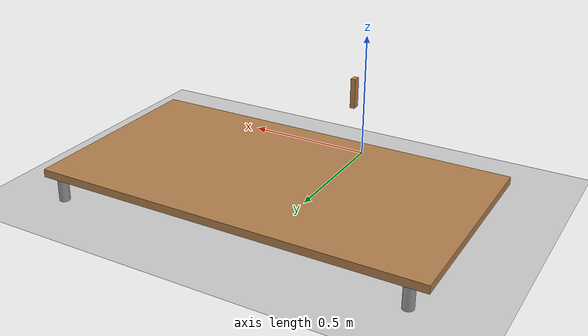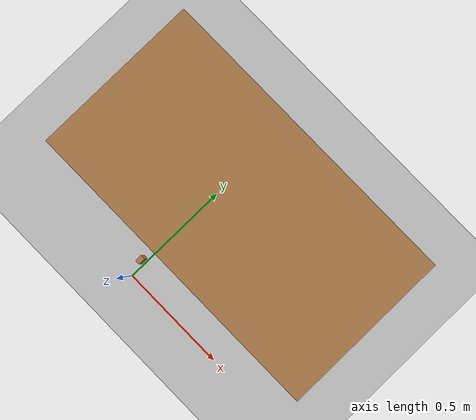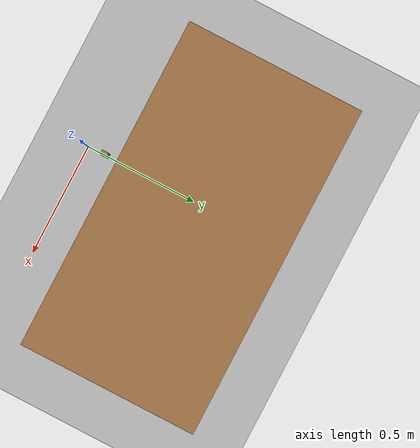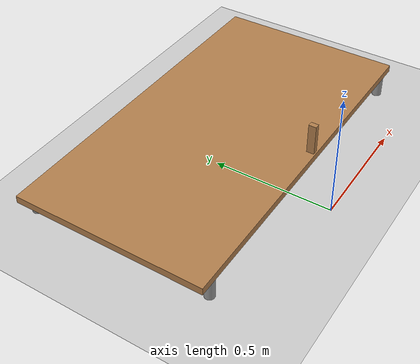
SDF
<sdf version="1.5">
 <world name="default">
  <include><uri>model://sun</uri></include>
  <include><uri>model://ground_plane</uri></include>
  <include><uri>model://table_short</uri><pose>0.1 0.54 0.05 0 0 0</pose></include>
  <include><uri>model://wood_cube_10cm_sensor3</uri><pose>0.0 0.1 0.25 0 0 1.57079</pose></include>
 </world>
</sdf>

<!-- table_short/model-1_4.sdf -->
<sdf version="1.4">
  <model name="table short">
    <static>true</static>
    <link name="link">
      <collision name="surface">
        <pose>0 0 0.05 0 0 0</pose>
        <geometry>
          <box>
            <size>1.5 0.8 0.03</size>
          </box>
        </geometry>
        <surface>
          <friction>
            <ode>
              <mu>0.6</mu>
              <mu2>0.6</mu2>
            </ode>
          </friction>
        </surface>
      </collision>
      <visual name="visual1">
        <pose>0 0 0.05 0 0 0</pose>
        <geometry>
          <box>
            <size>1.5 0.8 0.03</size>
          </box>
        </geometry>
        <material>
          <script>
            <uri>file://media/materials/scripts/gazebo.material</uri>
            <name>Gazebo/Wood</name>
          </script>
        </material>
      </visual>
      <collision name="front_left_leg">
        <pose>0.68 0.38 0.0 0 0 0</pose>
        <geometry>
          <cylinder>
            <radius>0.02</radius>
            <length>0.1</length>
          </cylinder>
        </geometry>
      </collision>
      <visual name="front_left_leg">
        <pose>0.68 0.38 0.0 0 0 0</pose>
        <geometry>
          <cylinder>
            <radius>0.02</radius>
            <length>0.1</length>
          </cylinder>
        </geometry>
        <material>
          <script>
            <uri>file://media/materials/scripts/gazebo.material</uri>
            <name>Gazebo/Grey</name>
          </script>
        </material>
      </visual>
      <collision name="front_right_leg">
        <pose>0.68 -0.38 0.0 0 0 0</pose>
        <geometry>
          <cylinder>
            <radius>0.02</radius>
            <length>0.1</length>
          </cylinder>
        </geometry>
      </collision>
      <visual name="front_right_leg">
        <pose>0.68 -0.38 0.0 0 0 0</pose>
        <geometry>
          <cylinder>
            <radius>0.02</radius>
            <length>0.1</length>
          </cylinder>
        </geometry>
        <material>
          <script>
            <uri>file://media/materials/scripts/gazebo.material</uri>
            <name>Gazebo/Grey</name>
          </script>
        </material>
      </visual>
      <collision name="back_right_leg">
        <pose>-0.68 -0.38 0.0 0 0 0</pose>
        <geometry>
          <cylinder>
            <radius>0.02</radius>
            <length>0.1</length>
          </cylinder>
        </geometry>
      </collision>
      <visual name="back_right_leg">
        <pose>-0.68 -0.38 0.0 0 0 0</pose>
        <geometry>
          <cylinder>
            <radius>0.02</radius>
            <length>0.1</length>
          </cylinder>
        </geometry>
        <material>
          <script>
            <uri>file://media/materials/scripts/gazebo.material</uri>
            <name>Gazebo/Grey</name>
          </script>
        </material>
      </visual>
      <collision name="back_left_leg">
        <pose>-0.68 0.38 0.0 0 0 0</pose>
        <geometry>
          <cylinder>
            <radius>0.02</radius>
            <length>0.1</length>
          </cylinder>
        </geometry>
      </collision>
      <visual name="back_left_leg">
        <pose>-0.68 0.38 0.0 0 0 0</pose>
        <geometry>
          <cylinder>
            <radius>0.02</radius>
            <length>0.1</length>
          </cylinder>
        </geometry>
        <material>
          <script>
            <uri>file://media/materials/scripts/gazebo.material</uri>
            <name>Gazebo/Grey</name>
          </script>
        </material>
      </visual>
    </link>
  </model>
</sdf>

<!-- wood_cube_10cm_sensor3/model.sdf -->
<sdf version="1.5">
  <model name="wood_cube_10cm_with_sensor_3">
    <link name="link">
      <pose>0 0 0.05 0 0 0</pose>
      <inertial>
        <mass>0.5167</mass>
        <inertia>
          <ixx>0.0008611666666666669</ixx>
          <ixy>0</ixy>
          <ixz>0</ixz>
          <iyy>0.0008611666666666669</iyy>
          <iyz>0</iyz>
          <izz>0.0008611666666666669</izz>
        </inertia>
      </inertial>

      <collision name="collision">
        <geometry>
          <box>
            <size>0.03 0.02 0.12</size>
          </box>
        </geometry>
        <surface>
          <contact>
            <!-- Red Pine coefficients for longitudinal axis of the wood
                 according to:
                 http://www.fpl.fs.fed.us/documnts/fplgtr/fplgtr113/ch04.pdf -->
            <poissons_ratio>0.347</poissons_ratio>
            <elastic_modulus>8.8e+09</elastic_modulus>
            <ode>
              <kp>100000</kp>
              <kd>100</kd>
              <max_vel>100.0</max_vel>
              <min_depth>0.001</min_depth>
            </ode>
          </contact>
          <friction>
            <torsional>
              <coefficient>1.0</coefficient>
              <use_patch_radius>0</use_patch_radius>
              <surface_radius>0.01</surface_radius>
            </torsional>
          </friction>
        </surface>
      </collision>

      <visual name="visual">
        <geometry>
          <box>
            <size>0.03 0.02 0.12</size>
          </box>
        </geometry>
        <material>
          <script>
            <uri>file://media/materials/scripts/gazebo.material</uri>
            <name>Gazebo/Wood</name>
          </script>
        </material>
      </visual>
    </link>
    <!-- *********************** ULTRASONIC SENSOR ************************  -->
    <link name="hokuyo_link">
      <!-- Visuals / Collisions omitted for this example -->
      <pose>0.015 0.01 0.235 0 0 0</pose>
      <inertial>
        <mass>0.5167</mass>
        <inertia>
          <ixx>0.0008611666666666669</ixx>
          <ixy>0</ixy>
          <ixz>0</ixz>
          <iyy>0.0008611666666666669</iyy>
          <iyz>0</iyz>
          <izz>0.0008611666666666669</izz>
        </inertia>
      </inertial>
      <collision name="collision">
        <geometry>
          <box>
            <size>0.05 0.02 0.235</size>
          </box>
        </geometry>
        <surface>
          <contact>
            <!-- Red Pine coefficients for longitudinal axis of the wood
                 according to:
                 http://www.fpl.fs.fed.us/documnts/fplgtr/fplgtr113/ch04.pdf -->
            <poissons_ratio>0.347</poissons_ratio>
            <elastic_modulus>8.8e+09</elastic_modulus>
            <ode>
              <kp>100000</kp>
              <kd>100</kd>
              <max_vel>100.0</max_vel>
              <min_depth>0.001</min_depth>
            </ode>
          </contact>
          <friction>
            <torsional>
              <coefficient>1.0</coefficient>
              <use_patch_radius>0</use_patch_radius>
              <surface_radius>0.01</surface_radius>
            </torsional>
          </friction>
        </surface>
      </collision>
      <sensor type="ray" name="head_hokuyo_sensor">
        <always_on>true</always_on>
        <visualize>true</visualize>
        <ray>
          <scan>
            <horizontal>
              <samples>1000</samples>
              <resolution>0.1</resolution>
              <min_angle>-1.570796326</min_angle>
              <max_angle>1.570796326</max_angle>
            </horizontal>
          </scan>
          <range>
            <min>0.10</min>
            <max>1.0</max>
            <resolution>0.05</resolution>
          </range>
        </ray>
        <plugin name="gazebo_ros_head_hokuyo_controller" filename="libgazebo_ros_laser.so">
          <topicName>/wx200/sensor/sonar_front4</topicName>
          <frameName>hokuyo_link</frameName>
          <gaussianNoise>0.01</gaussianNoise>
          <updateRate>10</updateRate>
        </plugin>
      </sensor>
    </link>
  </model>
</sdf>
